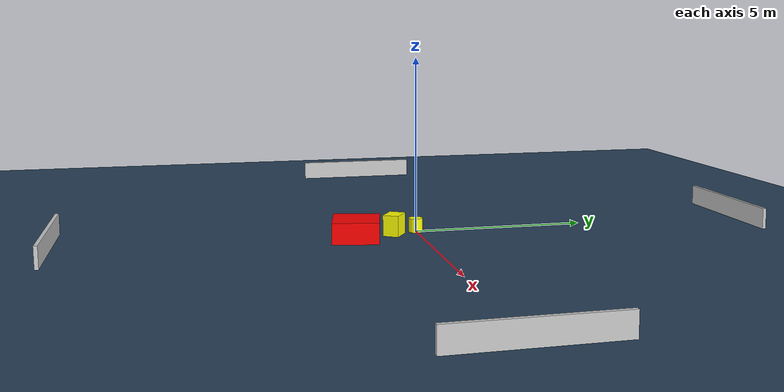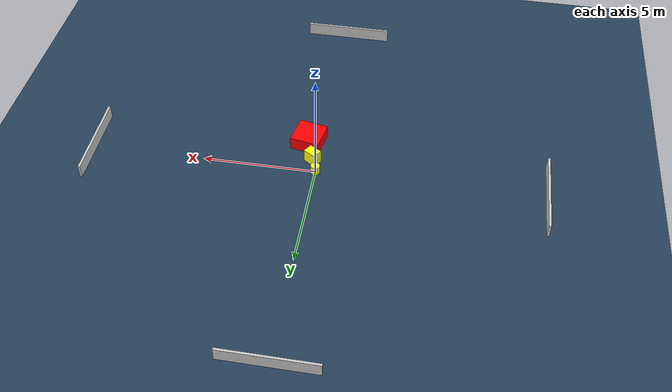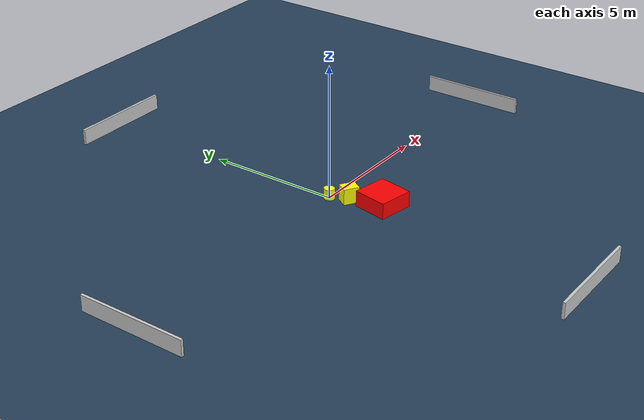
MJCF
<?xml version="1.0" ?>
<mujoco model="generated_environment">
  <option timestep="0.01" integrator="RK4" cone="elliptic"/>
  <default>
    <geom density="1"/>
  </default>
  <asset>
    <texture builtin="gradient" height="3072" name="skybox" rgb1="0.3 0.5 0.7" rgb2="0 0 0" type="skybox" width="512"/>
    <texture builtin="checker" height="300" name="groundplane" rgb1="0.2 0.3 0.4" rgb2="0.1 0.2 0.3" type="2d" width="300"/>
    <material name="groundplane" reflectance="0.2" texrepeat="5 5" texture="groundplane"/>
  </asset>
  <worldbody>
    <light dir="0 0 -1" directional="true" pos="0 0 1.5"/>
    <geom condim="3" friction="0.5 0.005 0.001" material="groundplane" name="floor" pos="0 0 0" size="0 0 0.05" type="plane"/>
    <body name="walls">
      <geom name="wall_1" condim="4" pos="-10.0 0.0 0.3" rgba="0.800000011920929 0.800000011920929 0.800000011920929 1.0" size="0.05 2.0 0.3" type="box"/>
      <geom name="wall_2" condim="4" pos="10.0 0.0 0.3" rgba="0.800000011920929 0.800000011920929 0.800000011920929 1.0" size="0.05 2.0 0.3" type="box"/>
      <geom name="wall_3" condim="4" pos="0.0 -10.0 0.3" rgba="0.800000011920929 0.800000011920929 0.800000011920929 1.0" size="2.0 0.05 0.3" type="box"/>
      <geom name="wall_4" condim="4" pos="0.0 10.0 0.3" rgba="0.800000011920929 0.800000011920929 0.800000011920929 1.0" size="2.0 0.05 0.3" type="box"/>
    </body>
    <body name="robot">
      <joint name="joint_x" type="slide" pos="0 0 0" axis="1 0 0"/>
      <joint name="joint_y" type="slide" pos="0 0 0" axis="0 1 0"/>
      <geom name="robot" type="cylinder" pos="0.0 0.0 0.2" size="0.2 0.2 0.0" mass="5.0" friction="1.0 0.005 0.0001" condim="4" rgba="1.0 1.0 0.0 1.0"/>
    </body>
    <body name="obstacle_1_movable">
      <geom name="obstacle_1_movable" condim="4" pos="0.2370248806192795 -0.6843254468837114 0.3" euler="0 0 327.28478753973314" friction="0.0 0.005 0.001" rgba="1.0 1.0 0.0 1.0" size="0.2968503010185214 0.22867237019860842 0.3" type="box" mass="0.1"/>
      <joint type="free"/>
    </body>
    <body name="obstacle_2_static">
      <geom name="obstacle_2_static" condim="4" pos="0.5933665770547131 -1.8401872797942314 0.3" euler="0 0 169.16254222464056" friction="0.0 0.005 0.001" rgba="1.0 0.0 0.0 1.0" size="0.6521324218474569 0.6512060268531839 0.3" type="box"/>
    </body>
  </worldbody>
  <actuator>
    <motor name="actuator_x" joint="joint_x" gear="1" ctrlrange="-1 1"/>
    <motor name="actuator_y" joint="joint_y" gear="1" ctrlrange="-1 1"/>
  </actuator>
</mujoco>
